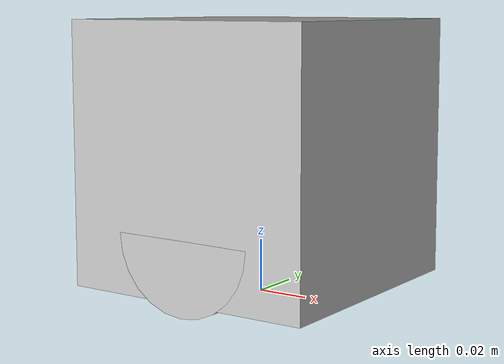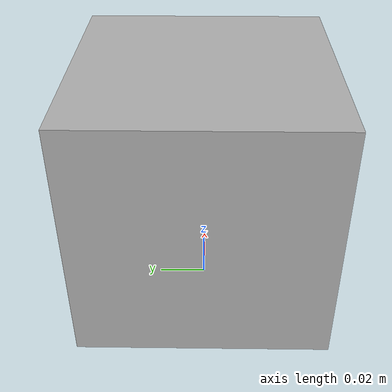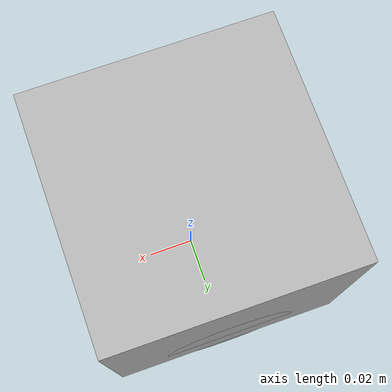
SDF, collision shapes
<?xml version='1.0'?>
<sdf version='1.6'>
  <model name='minipi'>
    <link name='body'>
      <pose frame=''>0 -0 0.055 0 -0 0</pose>
      <inertial>
        <inertia>
          <ixx>1</ixx>
          <ixy>0</ixy>
          <ixz>0</ixz>
          <iyy>1</iyy>
          <iyz>0</iyz>
          <izz>1</izz>
        </inertia>
        <mass>1</mass>
        <pose frame=''>0 0 0 0 -0 0</pose>
      </inertial>
      <self_collide>0</self_collide>
      <kinematic>0</kinematic>
      <gravity>1</gravity>
      <visual name='visual'>
        <pose frame=''>0.05 -0.05 -0.041 0 -0 1.5707</pose>
        <geometry>
          <mesh>
            <uri>/home/robond/Desktop/gazebo_project/model/minipi/miniPi_5.dae</uri>
          </mesh>
        </geometry>
        <cast_shadows>1</cast_shadows>
        <transparency>0</transparency>
        <material>
          <shader type='vertex'>
            <normal_map>__default__</normal_map>
          </shader>
        </material>
      </visual>
      <visual name='support_visual_1'>
        <pose frame=''>0.035 0 -0.0475 0 -0 0</pose>
        <geometry>
          <sphere>
            <radius>0.005</radius>
          </sphere>
        </geometry>
        <cast_shadows>1</cast_shadows>
        <transparency>0</transparency>
        <material>
          <shader type='vertex'>
            <normal_map>__default__</normal_map>
          </shader>
        </material>
      </visual>
      <visual name='support_visual_2'>
        <pose frame=''>-0.035 0 -0.0475 0 -0 0</pose>
        <geometry>
          <sphere>
            <radius>0.005</radius>
          </sphere>
        </geometry>
        <cast_shadows>1</cast_shadows>
        <transparency>0</transparency>
        <material>
          <shader type='vertex'>
            <normal_map>__default__</normal_map>
          </shader>
        </material>
      </visual>
      <collision name='support_collision_1'>
        <laser_retro>0</laser_retro>
        <max_contacts>10</max_contacts>
        <pose frame=''>0.035 0 -0.0475 0 -0 0</pose>
        <geometry>
          <sphere>
            <radius>0.005</radius>
          </sphere>
        </geometry>
        <surface>
          <friction>
            <ode>
              <mu>0</mu>
              <mu2>0</mu2>
              <fdir1>0 0 0</fdir1>
              <slip1>1</slip1>
              <slip2>1</slip2>
            </ode>
            <torsional>
              <coefficient>1</coefficient>
              <patch_radius>0</patch_radius>
              <surface_radius>0</surface_radius>
              <use_patch_radius>1</use_patch_radius>
              <ode>
                <slip>0</slip>
              </ode>
            </torsional>
          </friction>
          <bounce>
            <restitution_coefficient>0</restitution_coefficient>
            <threshold>1e+06</threshold>
          </bounce>
          <contact>
            <collide_without_contact>0</collide_without_contact>
            <collide_without_contact_bitmask>1</collide_without_contact_bitmask>
            <collide_bitmask>1</collide_bitmask>
            <ode>
              <soft_cfm>0</soft_cfm>
              <soft_erp>0.2</soft_erp>
              <kp>1e+13</kp>
              <kd>1</kd>
              <max_vel>0.01</max_vel>
              <min_depth>0</min_depth>
            </ode>
            <bullet>
              <split_impulse>1</split_impulse>
              <split_impulse_penetration_threshold>-0.01</split_impulse_penetration_threshold>
              <soft_cfm>0</soft_cfm>
              <soft_erp>0.2</soft_erp>
              <kp>1e+13</kp>
              <kd>1</kd>
            </bullet>
          </contact>
        </surface>
      </collision>
      <collision name='collision'>
        <laser_retro>0</laser_retro>
        <max_contacts>10</max_contacts>
        <pose frame=''>0 0 0 0 -0 0</pose>
        <geometry>
          <box>
            <size>0.1 0.1 0.1</size>
          </box>
        </geometry>
        <surface>
          <friction>
            <ode>
              <mu>1</mu>
              <mu2>1</mu2>
              <fdir1>0 0 0</fdir1>
              <slip1>0</slip1>
              <slip2>0</slip2>
            </ode>
            <torsional>
              <coefficient>1</coefficient>
              <patch_radius>0</patch_radius>
              <surface_radius>0</surface_radius>
              <use_patch_radius>1</use_patch_radius>
              <ode>
                <slip>0</slip>
              </ode>
            </torsional>
          </friction>
          <bounce>
            <restitution_coefficient>0</restitution_coefficient>
            <threshold>1e+06</threshold>
          </bounce>
          <contact>
            <collide_without_contact>0</collide_without_contact>
            <collide_without_contact_bitmask>1</collide_without_contact_bitmask>
            <collide_bitmask>1</collide_bitmask>
            <ode>
              <soft_cfm>0</soft_cfm>
              <soft_erp>0.2</soft_erp>
              <kp>1e+13</kp>
              <kd>1</kd>
              <max_vel>0.01</max_vel>
              <min_depth>0</min_depth>
            </ode>
            <bullet>
              <split_impulse>1</split_impulse>
              <split_impulse_penetration_threshold>-0.01</split_impulse_penetration_threshold>
              <soft_cfm>0</soft_cfm>
              <soft_erp>0.2</soft_erp>
              <kp>1e+13</kp>
              <kd>1</kd>
            </bullet>
          </contact>
        </surface>
      </collision>
      <collision name='caster_collision_2'>
        <laser_retro>0</laser_retro>
        <max_contacts>10</max_contacts>
        <pose frame=''>-0.035 0 -0.0475 0 -0 0</pose>
        <geometry>
          <sphere>
            <radius>0.005</radius>
          </sphere>
        </geometry>
        <surface>
          <friction>
            <ode>
              <mu>0</mu>
              <mu2>0</mu2>
              <fdir1>0 0 0</fdir1>
              <slip1>1</slip1>
              <slip2>1</slip2>
            </ode>
            <torsional>
              <coefficient>1</coefficient>
              <patch_radius>0</patch_radius>
              <surface_radius>0</surface_radius>
              <use_patch_radius>1</use_patch_radius>
              <ode>
                <slip>0</slip>
              </ode>
            </torsional>
          </friction>
          <bounce>
            <restitution_coefficient>0</restitution_coefficient>
            <threshold>1e+06</threshold>
          </bounce>
          <contact>
            <collide_without_contact>0</collide_without_contact>
            <collide_without_contact_bitmask>1</collide_without_contact_bitmask>
            <collide_bitmask>1</collide_bitmask>
            <ode>
              <soft_cfm>0</soft_cfm>
              <soft_erp>0.2</soft_erp>
              <kp>1e+13</kp>
              <kd>1</kd>
              <max_vel>0.01</max_vel>
              <min_depth>0</min_depth>
            </ode>
            <bullet>
              <split_impulse>1</split_impulse>
              <split_impulse_penetration_threshold>-0.01</split_impulse_penetration_threshold>
              <soft_cfm>0</soft_cfm>
              <soft_erp>0.2</soft_erp>
              <kp>1e+13</kp>
              <kd>1</kd>
            </bullet>
          </contact>
        </surface>
      </collision>
    </link>
    <link name='wheel_1'>
      <pose frame=''>0 0.04 0.028 1.5707 -0 0</pose>
      <inertial>
        <inertia>
          <ixx>1</ixx>
          <ixy>0</ixy>
          <ixz>0</ixz>
          <iyy>1</iyy>
          <iyz>0</iyz>
          <izz>1</izz>
        </inertia>
        <mass>1</mass>
      </inertial>
      <self_collide>0</self_collide>
      <kinematic>0</kinematic>
      <collision name='collision'>
        <laser_retro>0</laser_retro>
        <max_contacts>10</max_contacts>
        <pose frame=''>0 0 0 0 -0 0</pose>
        <geometry>
          <cylinder>
            <radius>0.028</radius>
            <length>0.02</length>
          </cylinder>
        </geometry>
        <surface>
          <friction>
            <ode>
              <mu>1</mu>
              <mu2>1</mu2>
              <fdir1>0 0 0</fdir1>
              <slip1>0</slip1>
              <slip2>0</slip2>
            </ode>
            <torsional>
              <coefficient>1</coefficient>
              <patch_radius>0</patch_radius>
              <surface_radius>0</surface_radius>
              <use_patch_radius>1</use_patch_radius>
              <ode>
                <slip>0</slip>
              </ode>
            </torsional>
          </friction>
          <bounce>
            <restitution_coefficient>0</restitution_coefficient>
            <threshold>1e+06</threshold>
          </bounce>
          <contact>
            <collide_without_contact>0</collide_without_contact>
            <collide_without_contact_bitmask>1</collide_without_contact_bitmask>
            <collide_bitmask>1</collide_bitmask>
            <ode>
              <soft_cfm>0</soft_cfm>
              <soft_erp>0.2</soft_erp>
              <kp>1e+13</kp>
              <kd>1</kd>
              <max_vel>0.01</max_vel>
              <min_depth>0</min_depth>
            </ode>
            <bullet>
              <split_impulse>1</split_impulse>
              <split_impulse_penetration_threshold>-0.01</split_impulse_penetration_threshold>
              <soft_cfm>0</soft_cfm>
              <soft_erp>0.2</soft_erp>
              <kp>1e+13</kp>
              <kd>1</kd>
            </bullet>
          </contact>
        </surface>
      </collision>
    </link>
    <link name='wheel_2'>
      <pose frame=''>0 -0.04 0.028 1.5707 -0 0</pose>
      <inertial>
        <inertia>
          <ixx>1</ixx>
          <ixy>0</ixy>
          <ixz>0</ixz>
          <iyy>1</iyy>
          <iyz>0</iyz>
          <izz>1</izz>
        </inertia>
        <mass>1</mass>
      </inertial>
      <self_collide>0</self_collide>
      <kinematic>0</kinematic>
      <collision name='collision'>
        <laser_retro>0</laser_retro>
        <max_contacts>10</max_contacts>
        <pose frame=''>0 0 0 0 -0 0</pose>
        <geometry>
          <cylinder>
            <radius>0.028</radius>
            <length>0.02</length>
          </cylinder>
        </geometry>
        <surface>
          <friction>
            <ode>
              <mu>1</mu>
              <mu2>1</mu2>
              <fdir1>0 0 0</fdir1>
              <slip1>0</slip1>
              <slip2>0</slip2>
            </ode>
            <torsional>
              <coefficient>1</coefficient>
              <patch_radius>0</patch_radius>
              <surface_radius>0</surface_radius>
              <use_patch_radius>1</use_patch_radius>
              <ode>
                <slip>0</slip>
              </ode>
            </torsional>
          </friction>
          <bounce>
            <restitution_coefficient>0</restitution_coefficient>
            <threshold>1e+06</threshold>
          </bounce>
          <contact>
            <collide_without_contact>0</collide_without_contact>
            <collide_without_contact_bitmask>1</collide_without_contact_bitmask>
            <collide_bitmask>1</collide_bitmask>
            <ode>
              <soft_cfm>0</soft_cfm>
              <soft_erp>0.2</soft_erp>
              <kp>1e+13</kp>
              <kd>1</kd>
              <max_vel>0.01</max_vel>
              <min_depth>0</min_depth>
            </ode>
            <bullet>
              <split_impulse>1</split_impulse>
              <split_impulse_penetration_threshold>-0.01</split_impulse_penetration_threshold>
              <soft_cfm>0</soft_cfm>
              <soft_erp>0.2</soft_erp>
              <kp>1e+13</kp>
              <kd>1</kd>
            </bullet>
          </contact>
        </surface>
      </collision>
    </link>
    <joint name='body_JOINT_1' type='revolute'>
      <parent>body</parent>
      <child>wheel_1</child>
      <pose frame=''>0 0 0 0 -0 0</pose>
      <axis>
        <xyz>0 0 1</xyz>
        <use_parent_model_frame>0</use_parent_model_frame>
        <limit>
          <lower>-1e+16</lower>
          <upper>1e+16</upper>
          <effort>-1</effort>
          <velocity>-1</velocity>
        </limit>
        <dynamics>
          <spring_reference>0</spring_reference>
          <spring_stiffness>0</spring_stiffness>
          <damping>0</damping>
          <friction>0</friction>
        </dynamics>
      </axis>
      <physics>
        <ode>
          <limit>
            <cfm>0</cfm>
            <erp>0.2</erp>
          </limit>
          <suspension>
            <cfm>0</cfm>
            <erp>0.2</erp>
          </suspension>
        </ode>
      </physics>
    </joint>
    <joint name='body_JOINT_2' type='revolute'>
      <parent>body</parent>
      <child>wheel_2</child>
      <pose frame=''>0 0 0 0 -0 0</pose>
      <axis>
        <xyz>0 0 1</xyz>
        <use_parent_model_frame>0</use_parent_model_frame>
        <limit>
          <lower>-1e+16</lower>
          <upper>1e+16</upper>
          <effort>-1</effort>
          <velocity>-1</velocity>
        </limit>
        <dynamics>
          <spring_reference>0</spring_reference>
          <spring_stiffness>0</spring_stiffness>
          <damping>0</damping>
          <friction>0</friction>
        </dynamics>
      </axis>
      <physics>
        <ode>
          <limit>
            <cfm>0</cfm>
            <erp>0.2</erp>
          </limit>
          <suspension>
            <cfm>0</cfm>
            <erp>0.2</erp>
          </suspension>
        </ode>
      </physics>
    </joint>
    <static>0</static>
    <allow_auto_disable>1</allow_auto_disable>
  </model>
</sdf>
